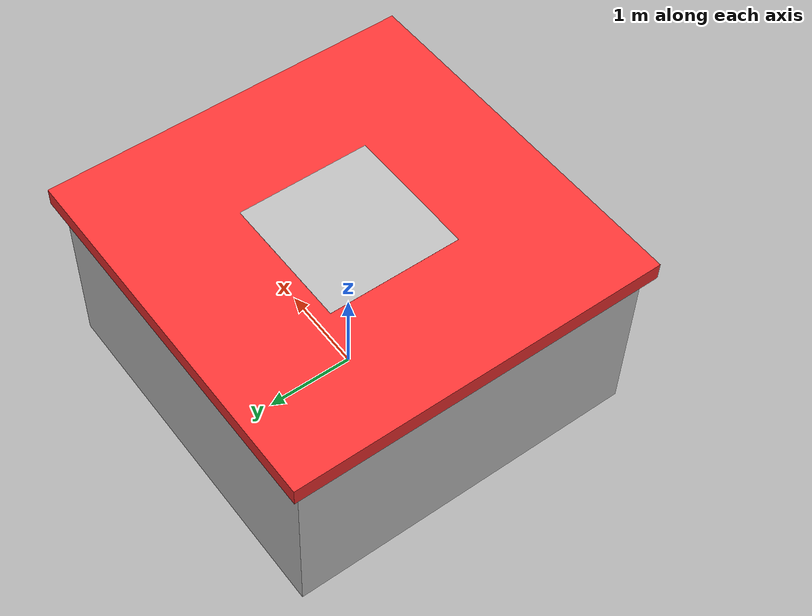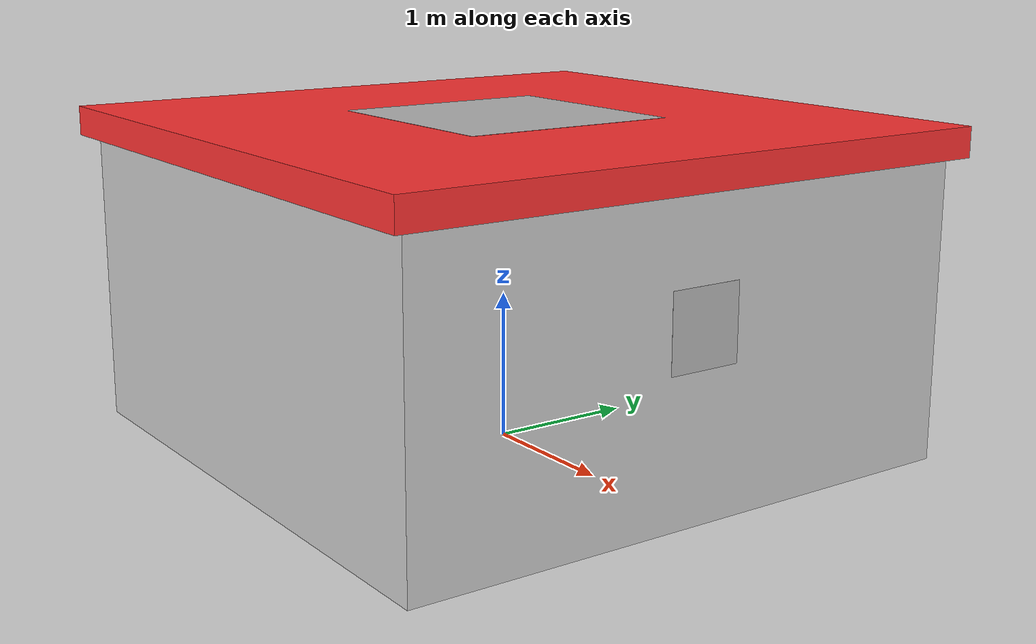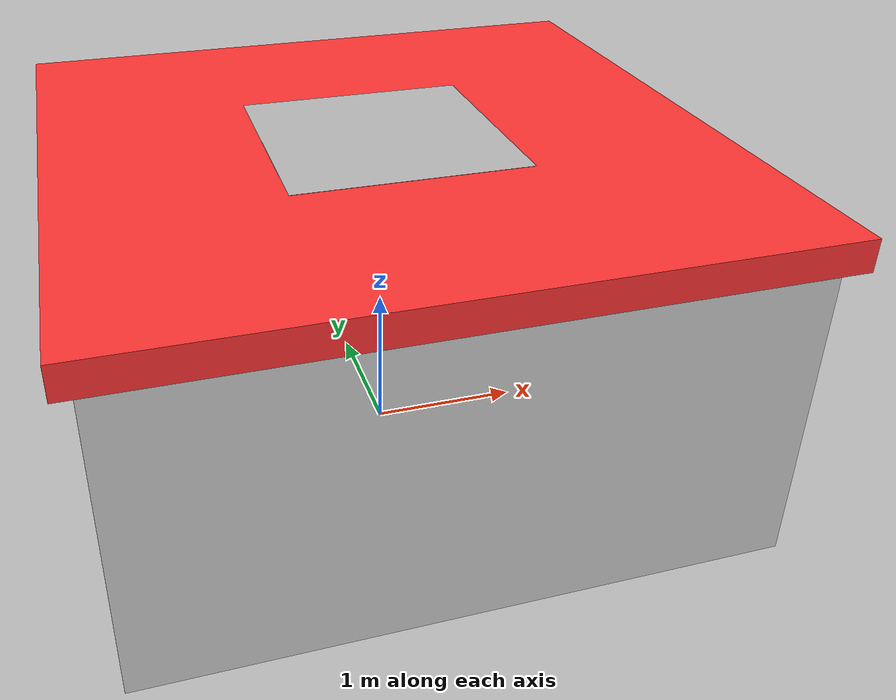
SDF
<?xml version="1.0" ?>
<sdf version="1.6">
  <model name="simple_house">
    <static>true</static>
    <link name="house_link">
      <!-- Main house body -->
      <visual name="house_body">
        <pose>0 0 1 0 0 0</pose>
        <geometry>
          <box>
            <size>4 4 2</size>
          </box>
        </geometry>
        <material>
          <ambient>0.8 0.8 0.8 1</ambient>
          <diffuse>0.8 0.8 0.8 1</diffuse>
        </material>
      </visual>

      <!-- RED ROOF -->
      <visual name="red_roof">
        <pose>0 0 2.1 0 0 0</pose>
        <geometry>
          <box>
            <size>4.2 4.2 0.2</size>
          </box>
        </geometry>
        <material>
          <ambient>1.0 0.2 0.2 1</ambient>
          <diffuse>1.0 0.2 0.2 1</diffuse>
        </material>
      </visual>

      <!-- ROOF ARUCO MARKER -->
      <visual name="aruco_roof">
        <pose>0 0 2.21 0 0 0</pose>
        <geometry>
          <plane>
            <normal>0 0 1</normal>
            <size>1.5 1.5</size>
          </plane>
        </geometry>
        <material>
          <script>
            <uri>file://media/materials/scripts/gazebo2.material</uri>
            <name>Gazebo/Aruco72</name>
          </script>
        </material>
      </visual>

      <!-- WALL ARUCO MARKER - FIXED -->
      <visual name="aruco_wall">
        <!-- Positioned on the front wall (+X direction) -->
        <pose>2.01 0 1.2 0 1.5708 0</pose>
        <geometry>
          <plane>
            <normal>0 0 1</normal>
            <size>0.5 0.5</size>
          </plane>
        </geometry>
        <material>
          <script>
            <uri>file://media/materials/scripts/gazebo.material</uri>
            <name>Gazebo/Aruco72</name>
          </script>
        </material>
      </visual>
    </link>
  </model>
</sdf>
